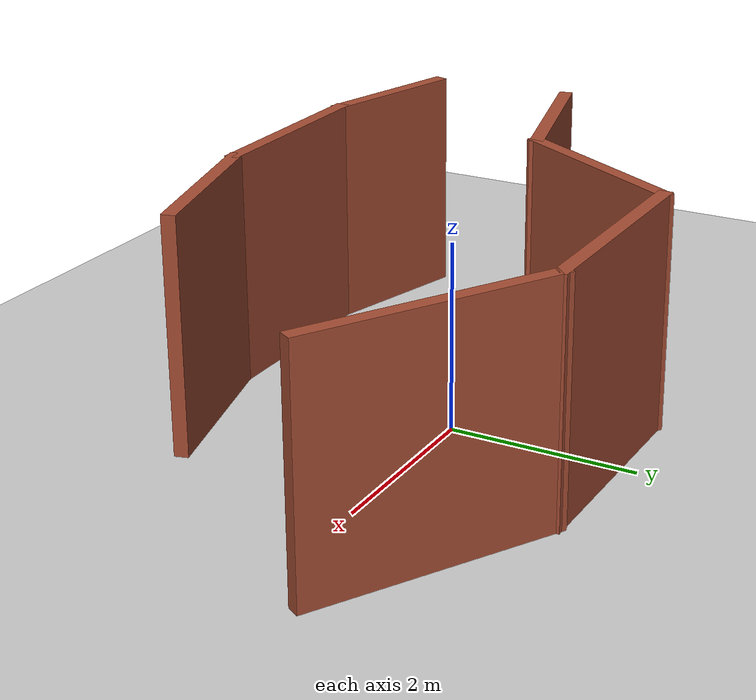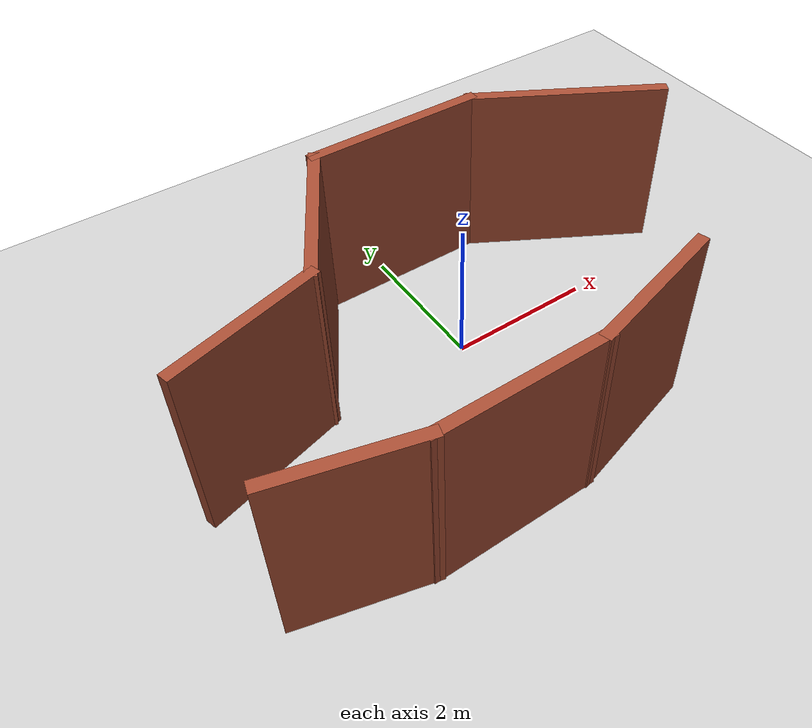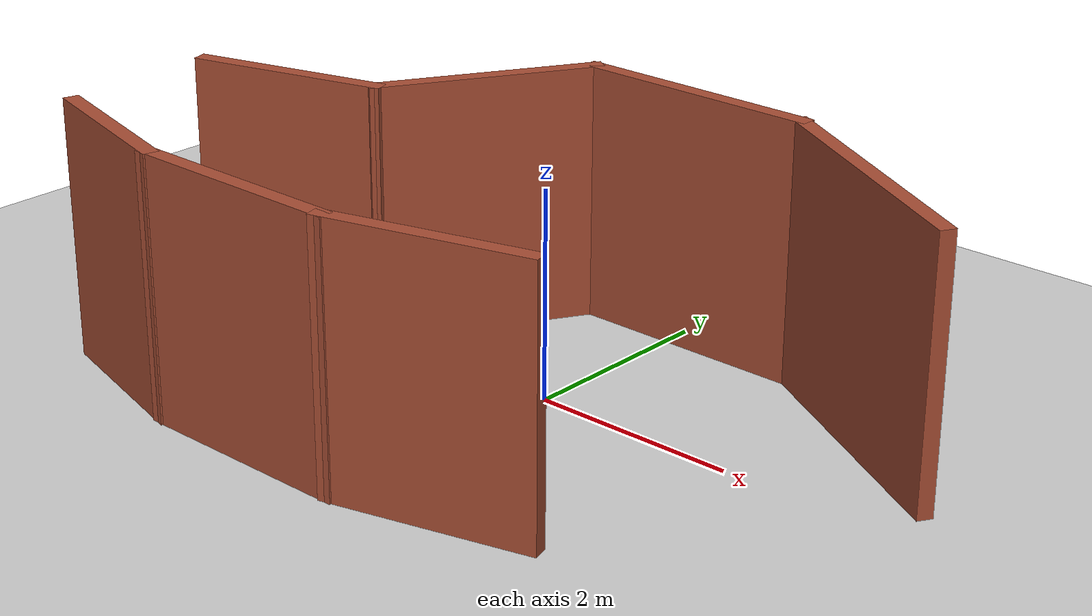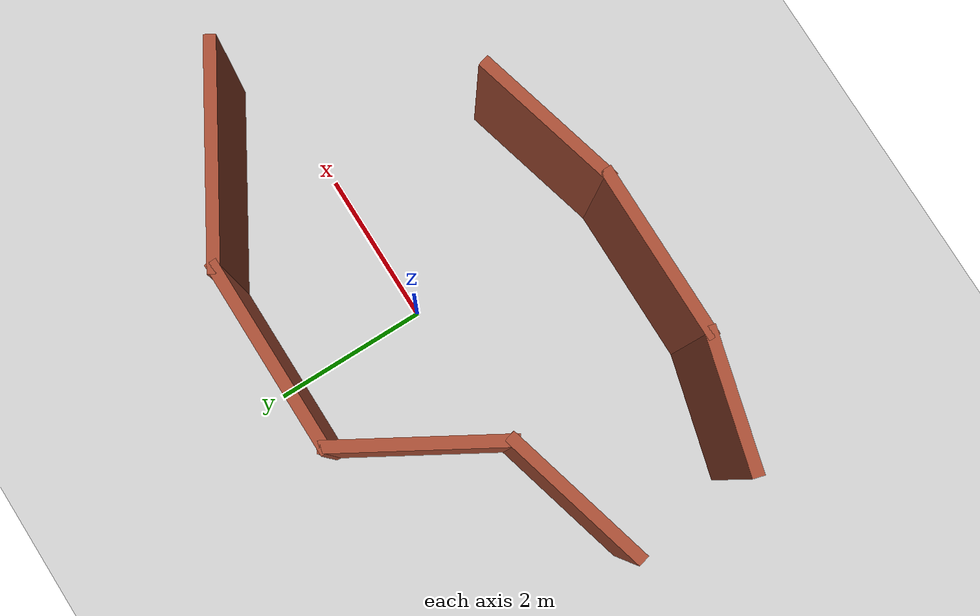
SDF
<sdf version="1.7">
 <world name="default">
  <light name="sun" type="directional">
   <pose>0 0 10 0 -0 0</pose>
   <diffuse>0.8 0.8 0.8 1</diffuse>
   <specular>0.2 0.2 0.2 1</specular>
   <attenuation>
    <range>1000</range>
    <constant>0.9</constant>
    <linear>0.01</linear>
    <quadratic>0.001</quadratic>
   </attenuation>
   <direction>-0.5 0.1 -0.9</direction>
   <spot><inner_angle>0</inner_angle><outer_angle>0</outer_angle><falloff>0</falloff></spot>
  </light>
  <model name="ground_plane">
   <static>1</static>
   <link name="link">
    <collision name="collision">
     <geometry><plane><normal>0 0 1</normal><size>100 100</size></plane></geometry>
     <surface>
      <contact><collide_bitmask>65535</collide_bitmask></contact>
      <friction><ode><mu>100</mu><mu2>50</mu2></ode></friction>
     </surface>
    </collision>
    <visual name="visual">
     <cast_shadows>0</cast_shadows>
     <geometry><plane><normal>0 0 1</normal><size>100 100</size></plane></geometry>
     <material>
      <script><uri>file://media/materials/scripts/gazebo.material</uri><name>Gazebo/Grey</name></script>
     </material>
    </visual>
   </link>
  </model>
  <gravity>0 0 -9.8</gravity>
  <magnetic_field>6e-06 2.3e-05 -4.2e-05</magnetic_field>
  <atmosphere type="adiabatic"/>
  <physics type="ode">
   <max_step_size>0.001</max_step_size>
   <real_time_factor>1</real_time_factor>
   <real_time_update_rate>1000</real_time_update_rate>
  </physics>
  <scene><ambient>0.4 0.4 0.4 1</ambient><background>0.7 0.7 0.7 1</background><shadows>1</shadows></scene>
  <audio><device>default</device></audio>
  <spherical_coordinates>
   <surface_model>EARTH_WGS84</surface_model>
   <latitude_deg>0</latitude_deg>
   <longitude_deg>0</longitude_deg>
   <elevation>0</elevation>
   <heading_deg>0</heading_deg>
  </spherical_coordinates>
  <model name="bricks1">
   <pose>-0.084387 -0.383773 0 0 -0 0</pose>
   <link name="Wall_0">
    <collision name="Wall_0_Collision">
     <geometry><box><size>1.75 0.15 2.5</size></box></geometry>
     <pose>0 0 1.25 0 -0 0</pose>
    </collision>
    <visual name="Wall_0_Visual">
     <pose>0 0 1.25 0 -0 0</pose>
     <geometry><box><size>1.75 0.15 2.5</size></box></geometry>
     <material>
      <script><uri>file://media/materials/scripts/gazebo.material</uri><name>Gazebo/Bricks</name></script>
      <ambient>1 1 1 1</ambient>
     </material>
     <meta><layer>0</layer></meta>
    </visual>
    <pose>-2.85287 -1.95328 0 0 -0 -0.261799</pose>
   </link>
   <link name="Wall_1">
    <collision name="Wall_1_Collision">
     <geometry><box><size>2.25 0.15 2.5</size></box></geometry>
     <pose>0 0 1.25 0 -0 0</pose>
    </collision>
    <visual name="Wall_1_Visual">
     <pose>0 0 1.25 0 -0 0</pose>
     <geometry><box><size>2.25 0.15 2.5</size></box></geometry>
     <material>
      <script><uri>file://media/materials/scripts/gazebo.material</uri><name>Gazebo/Bricks</name></script>
      <ambient>1 1 1 1</ambient>
     </material>
     <meta><layer>0</layer></meta>
    </visual>
    <pose>-1.03013 -2.16034 0 0 -0 0</pose>
   </link>
   <link name="Wall_2">
    <collision name="Wall_2_Collision">
     <geometry><box><size>2 0.15 2.5</size></box></geometry>
     <pose>0 0 1.25 0 -0 0</pose>
    </collision>
    <visual name="Wall_2_Visual">
     <pose>0 0 1.25 0 -0 0</pose>
     <geometry><box><size>2 0.15 2.5</size></box></geometry>
     <material>
      <script><uri>file://media/materials/scripts/gazebo.material</uri><name>Gazebo/Bricks</name></script>
      <ambient>1 1 1 1</ambient>
     </material>
     <meta><layer>0</layer></meta>
    </visual>
    <pose>0.91335 -1.92093 0 0 -0 0.261799</pose>
   </link>
   <link name="Wall_4">
    <collision name="Wall_4_Collision">
     <geometry><box><size>2 0.15 2.5</size></box></geometry>
     <pose>0 0 1.25 0 -0 0</pose>
    </collision>
    <visual name="Wall_4_Visual">
     <pose>0 0 1.25 0 -0 0</pose>
     <geometry><box><size>2 0.15 2.5</size></box></geometry>
     <material>
      <script><uri>file://media/materials/scripts/gazebo.material</uri><name>Gazebo/Bricks</name></script>
      <ambient>1 1 1 1</ambient>
     </material>
     <meta><layer>0</layer></meta>
    </visual>
    <pose>-2.83113 0.09168 0 0 -0 0.261799</pose>
   </link>
   <link name="Wall_5">
    <collision name="Wall_5_Collision">
     <geometry><box><size>2.25 0.15 2.5</size></box></geometry>
     <pose>0 0 1.25 0 -0 0</pose>
    </collision>
    <visual name="Wall_5_Visual">
     <pose>0 0 1.25 0 -0 0</pose>
     <geometry><box><size>2.25 0.15 2.5</size></box></geometry>
     <material>
      <script><uri>file://media/materials/scripts/gazebo.material</uri><name>Gazebo/Bricks</name></script>
      <ambient>1 1 1 1</ambient>
     </material>
     <meta><layer>0</layer></meta>
    </visual>
    <pose>-1.41265 1.24042 0 0 -0 1.0472</pose>
   </link>
   <link name="Wall_6">
    <collision name="Wall_6_Collision">
     <geometry><box><size>2.5 0.15 2.5</size></box></geometry>
     <pose>0 0 1.25 0 -0 0</pose>
    </collision>
    <visual name="Wall_6_Visual">
     <pose>0 0 1.25 0 -0 0</pose>
     <geometry><box><size>2.5 0.15 2.5</size></box></geometry>
     <material>
      <script><uri>file://media/materials/scripts/gazebo.material</uri><name>Gazebo/Bricks</name></script>
      <ambient>1 1 1 1</ambient>
     </material>
     <meta><layer>0</layer></meta>
    </visual>
    <pose>0.28735 2.14974 0 0 -0 0</pose>
   </link>
   <link name="Wall_7">
    <collision name="Wall_7_Collision">
     <geometry><box><size>2.75 0.15 2.5</size></box></geometry>
     <pose>0 0 1.25 0 -0 0</pose>
    </collision>
    <visual name="Wall_7_Visual">
     <pose>0 0 1.25 0 -0 0</pose>
     <geometry><box><size>2.75 0.15 2.5</size></box></geometry>
     <material>
      <script><uri>file://media/materials/scripts/gazebo.material</uri><name>Gazebo/Bricks</name></script>
      <ambient>1 1 1 1</ambient>
     </material>
     <meta><layer>0</layer></meta>
    </visual>
    <pose>2.58818 1.49974 0 0 -0 -0.523599</pose>
   </link>
   <static>1</static>
  </model>
 </world>
</sdf>
